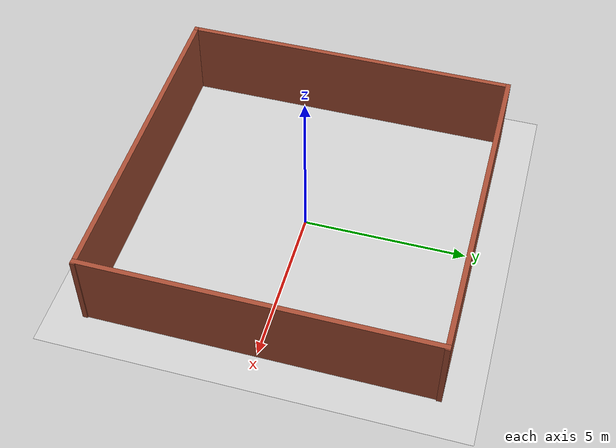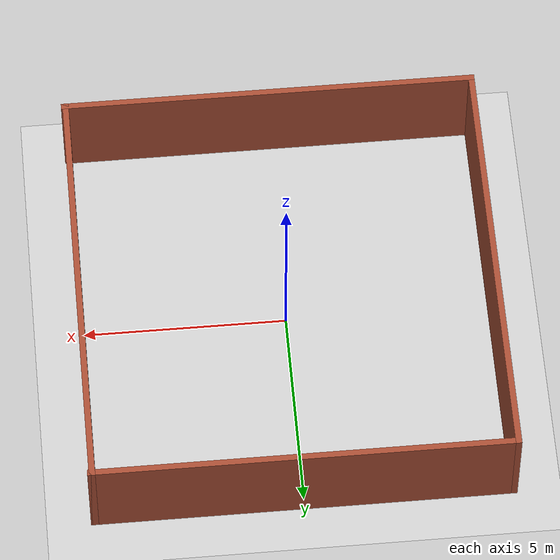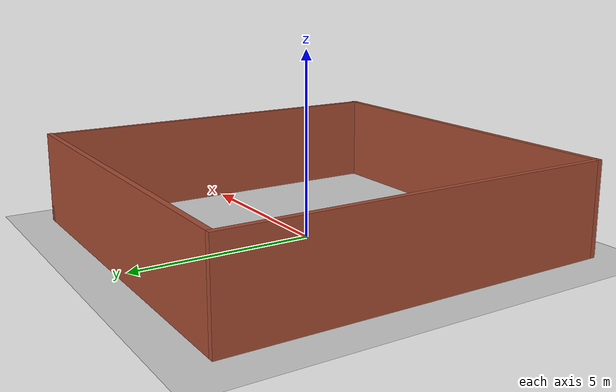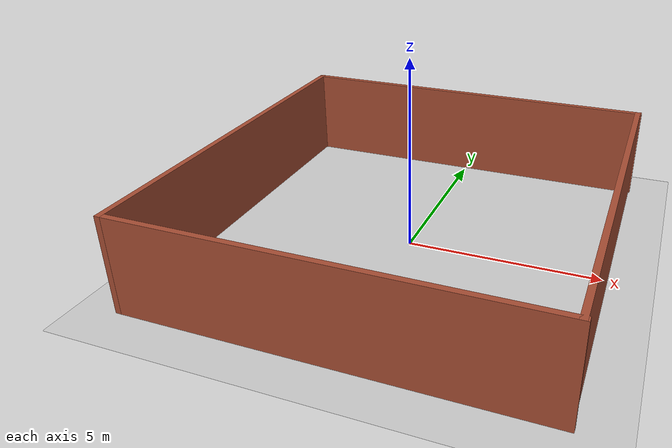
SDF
<sdf version="1.7">
 <world name="large_room">
  <light name="sun" type="directional">
   <pose>0 0 10 0 -0 0</pose>
   <diffuse>0.8 0.8 0.8 1</diffuse>
   <specular>0.2 0.2 0.2 1</specular>
   <attenuation>
    <range>1000</range>
    <constant>0.9</constant>
    <linear>0.01</linear>
    <quadratic>0.001</quadratic>
   </attenuation>
   <direction>-0.5 0.1 -0.9</direction>
   <spot><inner_angle>0</inner_angle><outer_angle>0</outer_angle><falloff>0</falloff></spot>
  </light>
  <model name="ground_plane">
   <static>1</static>
   <link name="link">
    <collision name="collision">
     <geometry><plane><normal>0 0 1</normal><size>100 100</size></plane></geometry>
     <surface><friction><ode><mu>100</mu><mu2>50</mu2></ode></friction></surface>
    </collision>
    <visual name="visual">
     <cast_shadows>0</cast_shadows>
     <geometry><plane><normal>0 0 1</normal><size>100 100</size></plane></geometry>
     <material>
      <script><uri>file://media/materials/scripts/gazebo.material</uri><name>Gazebo/Grey</name></script>
     </material>
    </visual>
   </link>
  </model>
  <gravity>0 0 -9.8</gravity>
  <magnetic_field>6e-06 2.3e-05 -4.2e-05</magnetic_field>
  <atmosphere type="adiabatic"/>
  <physics type="ode">
   <max_step_size>0.001</max_step_size>
   <real_time_factor>1</real_time_factor>
   <real_time_update_rate>1000</real_time_update_rate>
  </physics>
  <scene><ambient>0.4 0.4 0.4 1</ambient><background>0.7 0.7 0.7 1</background><shadows>1</shadows></scene>
  <spherical_coordinates>
   <surface_model>EARTH_WGS84</surface_model>
   <latitude_deg>0</latitude_deg>
   <longitude_deg>0</longitude_deg>
   <elevation>0</elevation>
   <heading_deg>0</heading_deg>
  </spherical_coordinates>
  <model name="Large_room.world">
   <pose>0.000652 0.029617 0 0 -0 0</pose>
   <link name="Wall_0">
    <collision name="Wall_0_Collision">
     <geometry><box><size>10.5 0.15 2.5</size></box></geometry>
     <pose>0 0 1.25 0 -0 0</pose>
    </collision>
    <visual name="Wall_0_Visual">
     <pose>0 0 1.25 0 -0 0</pose>
     <geometry><box><size>10.5 0.15 2.5</size></box></geometry>
     <material>
      <script><uri>file://media/materials/scripts/gazebo.material</uri><name>Gazebo/Bricks</name></script>
      <ambient>1 1 1 1</ambient>
     </material>
     <meta><layer>0</layer></meta>
    </visual>
    <pose>-5.07065 -0 0 0 -0 1.5708</pose>
   </link>
   <link name="Wall_1">
    <collision name="Wall_1_Collision">
     <geometry><box><size>10.2913 0.15 2.5</size></box></geometry>
     <pose>0 0 1.25 0 -0 0</pose>
    </collision>
    <visual name="Wall_1_Visual">
     <pose>0 0 1.25 0 -0 0</pose>
     <geometry><box><size>10.2913 0.15 2.5</size></box></geometry>
     <material>
      <script><uri>file://media/materials/scripts/gazebo.material</uri><name>Gazebo/Bricks</name></script>
      <ambient>1 1 1 1</ambient>
     </material>
     <meta><layer>0</layer></meta>
    </visual>
    <pose>0 5.175 0 0 -0 0</pose>
   </link>
   <link name="Wall_2">
    <collision name="Wall_2_Collision">
     <geometry><box><size>10.5 0.15 2.5</size></box></geometry>
     <pose>0 0 1.25 0 -0 0</pose>
    </collision>
    <visual name="Wall_2_Visual">
     <pose>0 0 1.25 0 -0 0</pose>
     <geometry><box><size>10.5 0.15 2.5</size></box></geometry>
     <material>
      <script><uri>file://media/materials/scripts/gazebo.material</uri><name>Gazebo/Bricks</name></script>
      <ambient>1 1 1 1</ambient>
     </material>
     <meta><layer>0</layer></meta>
    </visual>
    <pose>5.03587 -0 0 0 -0 -1.5708</pose>
   </link>
   <link name="Wall_3">
    <collision name="Wall_3_Collision">
     <geometry><box><size>10.2913 0.15 2.5</size></box></geometry>
     <pose>0 0 1.25 0 -0 0</pose>
    </collision>
    <visual name="Wall_3_Visual">
     <pose>0 0 1.25 0 -0 0</pose>
     <geometry><box><size>10.2913 0.15 2.5</size></box></geometry>
     <material>
      <script><uri>file://media/materials/scripts/gazebo.material</uri><name>Gazebo/Bricks</name></script>
      <ambient>1 1 1 1</ambient>
     </material>
     <meta><layer>0</layer></meta>
    </visual>
    <pose>0 -5.175 0 0 -0 3.14159</pose>
   </link>
   <static>1</static>
  </model>
  <plugin name="gazebo_occupancy_map" filename="libgazebo_2Dmap_plugin.so">
   <map_resolution>0.1</map_resolution>
   <map_height>0.3</map_height>
   <map_size_x>12</map_size_x>
   <map_size_y>12</map_size_y>
   <init_robot_x>0</init_robot_x>
   <init_robot_y>0</init_robot_y>
  </plugin>
 </world>
</sdf>
